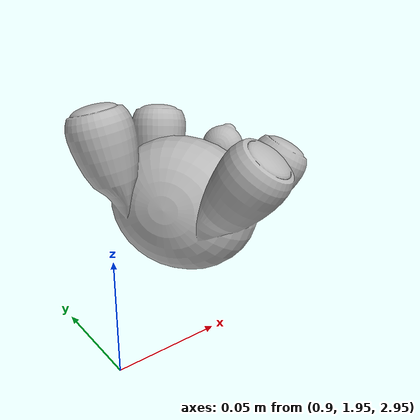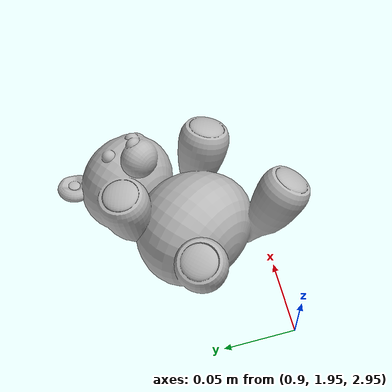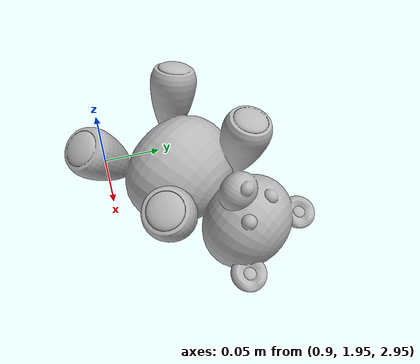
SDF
<?xml version='1.0'?>
<sdf version='1.6'>
    <model name='bear'>
        <pose frame=''>1.0 2.0 3.0 4.0 5.0 6.</pose>
        <link name='base_link_bear'>
            <gravity>0</gravity>
            <visual name='bear_vis'>
                <geometry>
                    <mesh>
                        <scale>0.04 0.04 0.04</scale>
                        <uri>model://meshes/bear_gazebo.dae</uri>
                    </mesh>
                </geometry>
            </visual>
            <collision name='bear_col'>
                <geometry>
                    <mesh>
                        <scale>0.04 0.04 0.04</scale>
                        <uri>model://meshes/bear_gazebo.dae</uri>
                    </mesh>
                </geometry>
            </collision>
        </link>
    </model>
</sdf>
